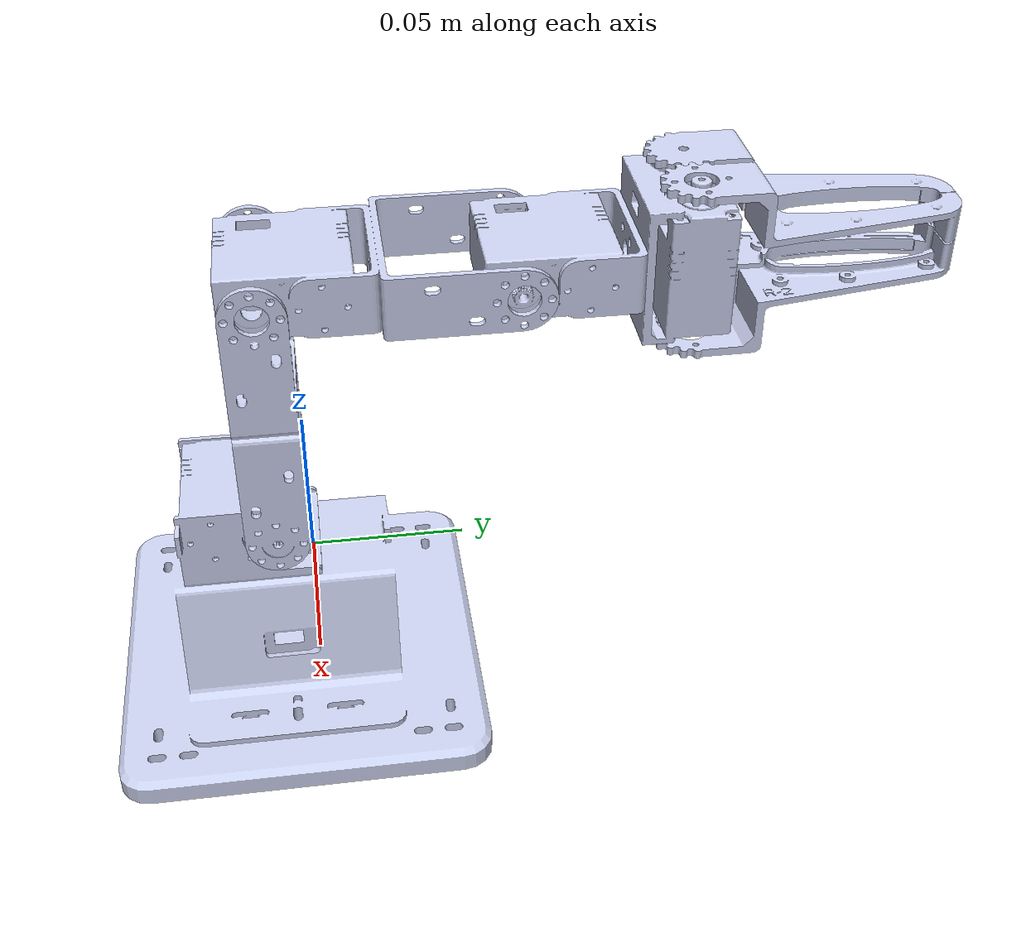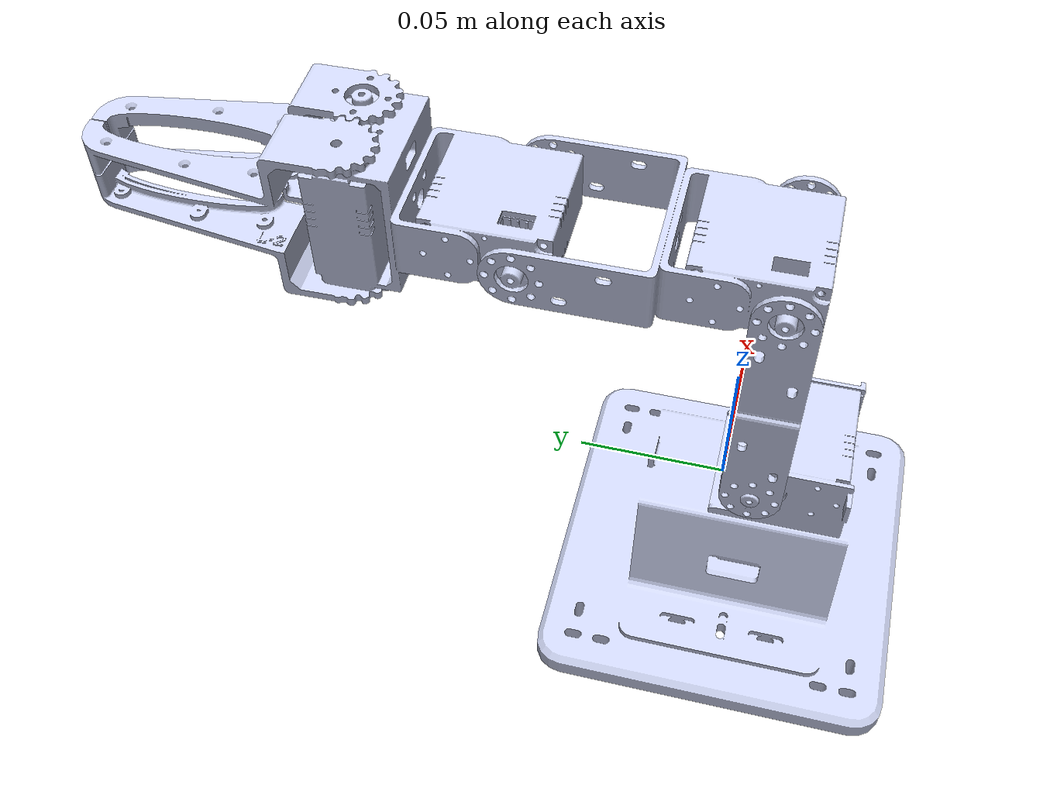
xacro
<?xml version="1.0"?>
<robot xmlns:xacro="http://www.ros.org/wiki/xacro" name="test4_dof_robot">
    <xacro:arg name="initial_positions_file" default="initial_positions.yaml" />

    <!-- Import test4_dof_robot urdf file -->
    <xacro:include filename="$(find test4_dof_robot)/urdf/test4_dof_robot.urdf" />

    <!-- Import control_xacro -->
    <xacro:include filename="test4_dof_robot.ros2_control.xacro" />

    <xacro:test4_dof_robot_ros2_control name="FakeSystem" initial_positions_file="$(arg initial_positions_file)"/>

</robot>

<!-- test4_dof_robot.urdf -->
<robot
  name="test4_dof_robot">
  <link
    name="base_link">
    <inertial>
      <origin
        xyz="6.91716587637066E-09 -0.0403002903986256 0.00812903865775771"
        rpy="0 0 0" />
      <mass
        value="0.170234591037879" />
      <inertia
        ixx="0.000190344867929517"
        ixy="-2.87752967166211E-12"
        ixz="1.49585044578155E-11"
        iyy="0.000385505347421722"
        iyz="4.25280510149558E-08"
        izz="0.000209895117595717" />
    </inertial>
    <visual>
      <origin
        xyz="0 0 0"
        rpy="0 0 0" />
      <geometry>
        <mesh
          filename="package://test4_dof_robot/meshes/base_link.STL" />
      </geometry>
      <material
        name="">
        <color
          rgba="0.792156862745098 0.819607843137255 0.933333333333333 1" />
      </material>
    </visual>
    <collision>
      <origin
        xyz="0 0 0"
        rpy="0 0 0" />
      <geometry>
        <mesh
          filename="package://test4_dof_robot/meshes/base_link.STL" />
      </geometry>
    </collision>
  </link>
  <link
    name="link0">
    <inertial>
      <origin
        xyz="-0.000148686471246792 -0.0108477499496044 0.0127257064637936"
        rpy="0 0 0" />
      <mass
        value="0.0134533721751118" />
      <inertia
        ixx="2.84098753200004E-06"
        ixy="-3.4307159559468E-09"
        ixz="5.30738424481828E-11"
        iyy="2.18307388098522E-06"
        iyz="2.0019419066969E-07"
        izz="3.55990656348061E-06" />
    </inertial>
    <visual>
      <origin
        xyz="0 0 0"
        rpy="0 0 0" />
      <geometry>
        <mesh
          filename="package://test4_dof_robot/meshes/link0.STL" />
      </geometry>
      <material
        name="">
        <color
          rgba="0.792156862745098 0.819607843137255 0.933333333333333 1" />
      </material>
    </visual>
    <collision>
      <origin
        xyz="0 0 0"
        rpy="0 0 0" />
      <geometry>
        <mesh
          filename="package://test4_dof_robot/meshes/link0.STL" />
      </geometry>
    </collision>
  </link>
  <joint
    name="joint0"
    type="revolute">
    <origin
      xyz="0 -0.00968 0.0037502"
      rpy="0 0 0" />
    <parent
      link="base_link" />
    <child
      link="link0" />
    <axis
      xyz="0 0 -1" />
    <limit
      lower="-2"
      upper="2"
      effort="100"
      velocity="1" />
  </joint>
  <link
    name="link1">
    <inertial>
      <origin
        xyz="-2.62658044619668E-09 -0.0345571058935115 0.0254946423103066"
        rpy="0 0 0" />
      <mass
        value="0.0120579589553567" />
      <inertia
        ixx="7.19129614481569E-06"
        ixy="-6.77986390248771E-09"
        ixz="7.80423344774602E-21"
        iyy="5.27353232807871E-06"
        iyz="-2.08826968289198E-19"
        izz="2.71342255945596E-06" />
    </inertial>
    <visual>
      <origin
        xyz="0 0 0"
        rpy="0 0 0" />
      <geometry>
        <mesh
          filename="package://test4_dof_robot/meshes/link1.STL" />
      </geometry>
      <material
        name="">
        <color
          rgba="0.792156862745098 0.819607843137255 0.933333333333333 1" />
      </material>
    </visual>
    <collision>
      <origin
        xyz="0 0 0"
        rpy="0 0 0" />
      <geometry>
        <mesh
          filename="package://test4_dof_robot/meshes/link1.STL" />
      </geometry>
    </collision>
  </link>
  <joint
    name="joint1"
    type="revolute">
    <origin
      xyz="0.02575 -0.00081639 0.017894"
      rpy="-1.5708 0 1.5708" />
    <parent
      link="link0" />
    <child
      link="link1" />
    <axis
      xyz="0 0 1" />
    <limit
      lower="-0.9"
      upper="1.5"
      effort="100"
      velocity="1" />
  </joint>
  <link
    name="link2">
    <inertial>
      <origin
        xyz="0.0265477568891185 5.89201840095477E-10 0.0209223131306843"
        rpy="0 0 0" />
      <mass
        value="0.0163235420272894" />
      <inertia
        ixx="4.24056894578294E-06"
        ixy="3.3898849906389E-09"
        ixz="-3.36881501952151E-09"
        iyy="6.33118981534797E-06"
        iyz="-4.63361312936769E-15"
        izz="3.44644530707849E-06" />
    </inertial>
    <visual>
      <origin
        xyz="0 0 0"
        rpy="0 0 0" />
      <geometry>
        <mesh
          filename="package://test4_dof_robot/meshes/link2.STL" />
      </geometry>
      <material
        name="">
        <color
          rgba="0.792156862745098 0.819607843137255 0.933333333333333 1" />
      </material>
    </visual>
    <collision>
      <origin
        xyz="0 0 0"
        rpy="0 0 0" />
      <geometry>
        <mesh
          filename="package://test4_dof_robot/meshes/link2.STL" />
      </geometry>
    </collision>
  </link>
  <joint
    name="joint2"
    type="revolute">
    <origin
      xyz="0 -0.081399 0.00495"
      rpy="0 0 0" />
    <parent
      link="link1" />
    <child
      link="link2" />
    <axis
      xyz="0 0 1" />
    <limit
      lower="-3.14"
      upper="0.9"
      effort="100"
      velocity="1" />
  </joint>
  <link
    name="link3">
    <inertial>
      <origin
        xyz="0.033832 -8.9596E-05 0.021063"
        rpy="0 0 0" />
      <mass
        value="0.026612" />
      <inertia
        ixx="6.1113E-06"
        ixy="-1.4134E-12"
        ixz="-2.371E-07"
        iyy="5.9084E-06"
        iyz="3.3192E-09"
        izz="5.1331E-06" />
    </inertial>
    <visual>
      <origin
        xyz="0 0 0"
        rpy="0 0 0" />
      <geometry>
        <mesh
          filename="package://test4_dof_robot/meshes/link3.STL" />
      </geometry>
      <material
        name="">
        <color
          rgba="0.79216 0.81961 0.93333 1" />
      </material>
    </visual>
    <collision>
      <origin
        xyz="0 0 0"
        rpy="0 0 0" />
      <geometry>
        <mesh
          filename="package://test4_dof_robot/meshes/link3.STL" />
      </geometry>
    </collision>
  </link>
  <joint
    name="joint3"
    type="revolute">
    <origin
      xyz="0.077374 0 0"
      rpy="0 0 0" />
    <parent
      link="link2" />
    <child
      link="link3" />
    <axis
      xyz="0 0 1" />
    <limit
      lower="-2"
      upper="1.5"
      effort="100"
      velocity="1" />
  </joint>
  <link
    name="link4_0">
    <inertial>
      <origin
        xyz="-0.0006307 0.033046 -0.02663"
        rpy="0 0 0" />
      <mass
        value="0.008697" />
      <inertia
        ixx="7.0254E-06"
        ixy="4.55E-07"
        ixz="-4.4719E-09"
        iyy="7.9398E-07"
        iyz="3.3349E-08"
        izz="6.772E-06" />
    </inertial>
    <visual>
      <origin
        xyz="0 0 0"
        rpy="0 0 0" />
      <geometry>
        <mesh
          filename="package://test4_dof_robot/meshes/link4_0.STL" />
      </geometry>
      <material
        name="">
        <color
          rgba="0.79216 0.81961 0.93333 1" />
      </material>
    </visual>
    <collision>
      <origin
        xyz="0 0 0"
        rpy="0 0 0" />
      <geometry>
        <mesh
          filename="package://test4_dof_robot/meshes/link4_0.STL" />
      </geometry>
    </collision>
  </link>
  <joint
    name="joint4_0"
    type="revolute">
    <origin
      xyz="0.053675 -0.0266 0.0103"
      rpy="1.5708 1.5708 0" />
    <parent
      link="link3" />
    <child
      link="link4_0" />
    <axis
      xyz="0 0 -1" />
    <limit
      lower="0"
      upper="2"
      effort="100"
      velocity="1" />
  </joint>
  <link
    name="link4_1">
    <inertial>
      <origin
        xyz="0.00017396 0.031505 -0.031493"
        rpy="0 0 0" />
      <mass
        value="0.013737" />
      <inertia
        ixx="1.1307E-05"
        ixy="-5.7111E-07"
        ixz="-4.6526E-08"
        iyy="1.2253E-06"
        iyz="-7.5619E-07"
        izz="1.0889E-05" />
    </inertial>
    <visual>
      <origin
        xyz="0 0 0"
        rpy="0 0 0" />
      <geometry>
        <mesh
          filename="package://test4_dof_robot/meshes/link4_1.STL" />
      </geometry>
      <material
        name="">
        <color
          rgba="0.79216 0.81961 0.93333 1" />
      </material>
    </visual>
    <collision>
      <origin
        xyz="0 0 0"
        rpy="0 0 0" />
      <geometry>
        <mesh
          filename="package://test4_dof_robot/meshes/link4_1.STL" />
      </geometry>
    </collision>
  </link>
  <joint
    name="joint4_1"
    type="revolute">
    <origin
      xyz="0.053675 -0.0263 0.0323"
      rpy="1.5708 1.5708 0" />
    <parent
      link="link3" />
    <child
      link="link4_1" />
    <axis
      xyz="0 0 -1" />
    <limit
      lower="-2"
      upper="0"
      effort="100"
      velocity="1" />
  </joint>
</robot>
